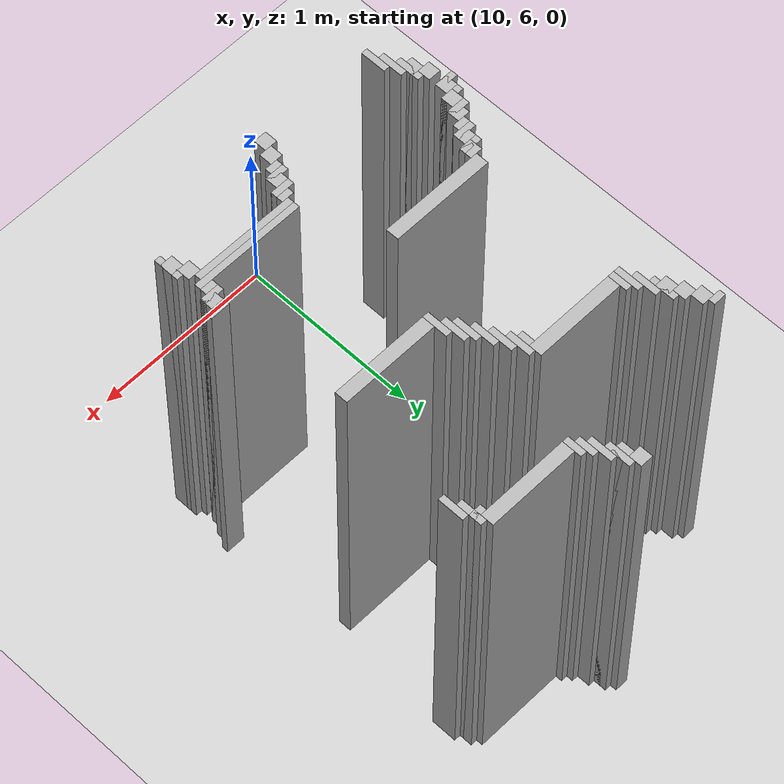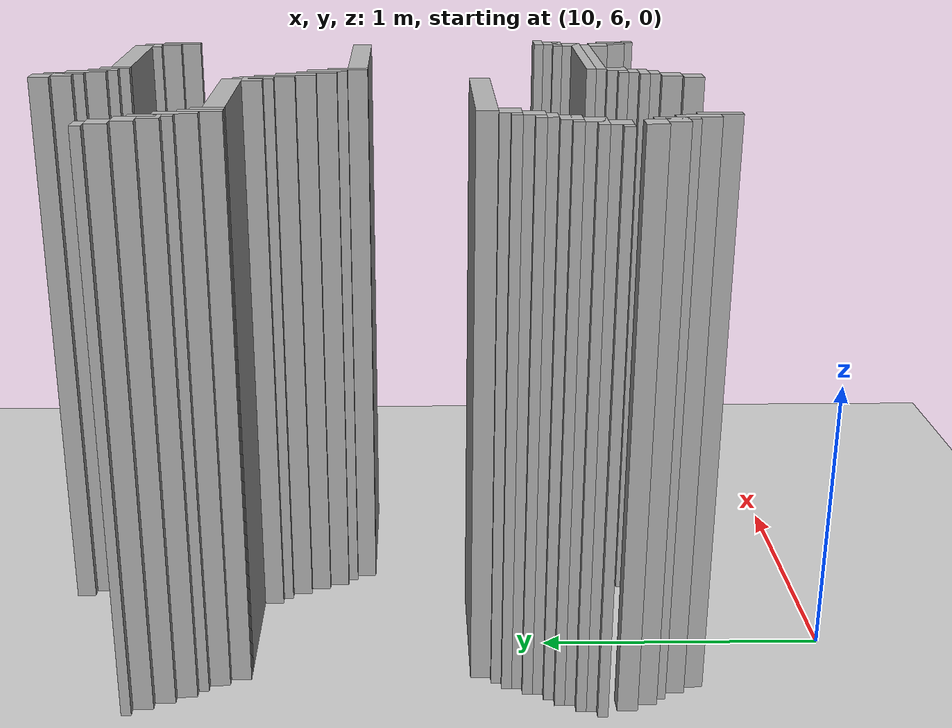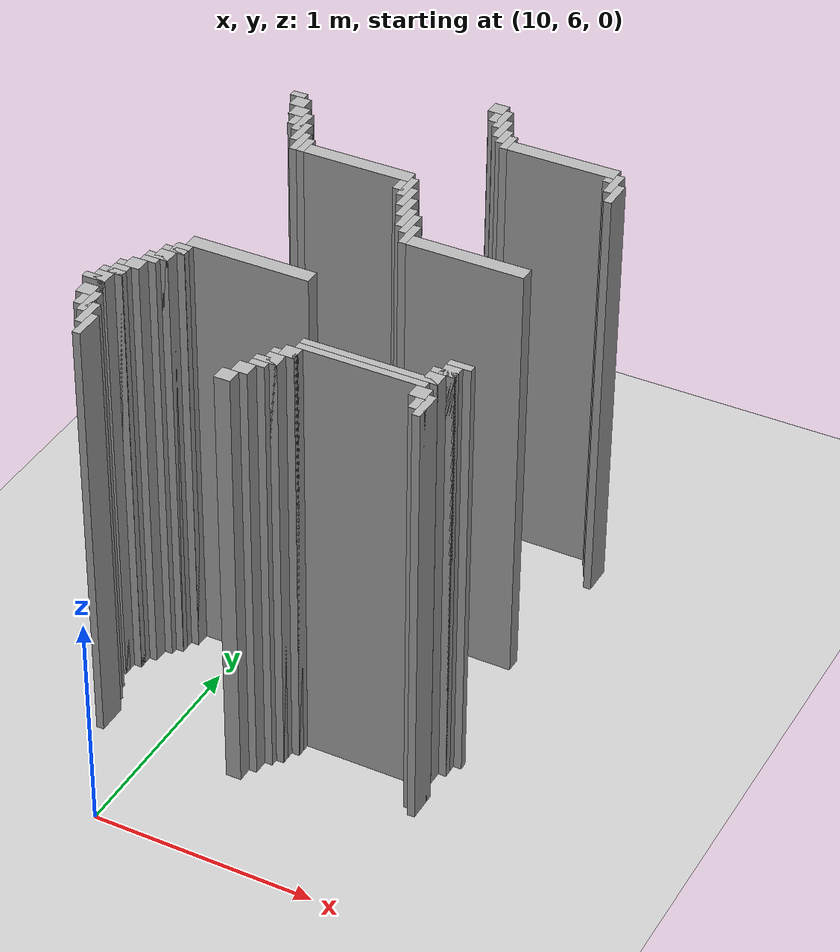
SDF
<sdf version="1.6">
 <world name="slam_world">
  <model name="ground_plane">
   <static>true</static>
   <link name="link">
    <collision name="collision">
     <geometry><plane><normal>0 0 1</normal><size>100 100</size></plane></geometry>
    </collision>
    <visual name="visual">
     <geometry><plane><normal>0 0 1</normal><size>100 100</size></plane></geometry>
     <material>
      <ambient>0.8 0.8 0.8 1</ambient>
      <diffuse>0.8 0.8 0.8 1</diffuse>
      <specular>0.8 0.8 0.8 1</specular>
     </material>
    </visual>
   </link>
  </model>
  <model name="wall_2883">
   <static>true</static>
   <pose>10.406032482598608 8.735498839907192 1.0 0 0 0</pose>
   <link name="link">
    <collision name="collision">
     <geometry><box><size>0.06960556844547564 0.06960556844547564 2.0</size></box></geometry>
    </collision>
    <visual name="visual">
     <geometry><box><size>0.06960556844547564 0.06960556844547564 2.0</size></box></geometry>
     <material><ambient>0.5 0.5 0.5 1</ambient><diffuse>0.7 0.7 0.7 1</diffuse></material>
    </visual>
   </link>
  </model>
  <model name="wall_2898">
   <static>true</static>
   <pose>10.458236658932714 8.665893271461716 1.0 0 0 0</pose>
   <link name="link">
    <collision name="collision">
     <geometry><box><size>0.03480278422273782 0.13921113689095127 2.0</size></box></geometry>
    </collision>
    <visual name="visual">
     <geometry><box><size>0.03480278422273782 0.13921113689095127 2.0</size></box></geometry>
     <material><ambient>0.5 0.5 0.5 1</ambient><diffuse>0.7 0.7 0.7 1</diffuse></material>
    </visual>
   </link>
  </model>
  <model name="wall_2911">
   <static>true</static>
   <pose>10.440835266821345 8.665893271461716 1.0 0 0 0</pose>
   <link name="link">
    <collision name="collision">
     <geometry><box><size>0.06960556844547564 0.06960556844547564 2.0</size></box></geometry>
    </collision>
    <visual name="visual">
     <geometry><box><size>0.06960556844547564 0.06960556844547564 2.0</size></box></geometry>
     <material><ambient>0.5 0.5 0.5 1</ambient><diffuse>0.7 0.7 0.7 1</diffuse></material>
    </visual>
   </link>
  </model>
  <model name="wall_2924">
   <static>true</static>
   <pose>10.493039443155451 8.596287703016241 1.0 0 0 0</pose>
   <link name="link">
    <collision name="collision">
     <geometry><box><size>0.03480278422273782 0.13921113689095127 2.0</size></box></geometry>
    </collision>
    <visual name="visual">
     <geometry><box><size>0.03480278422273782 0.13921113689095127 2.0</size></box></geometry>
     <material><ambient>0.5 0.5 0.5 1</ambient><diffuse>0.7 0.7 0.7 1</diffuse></material>
    </visual>
   </link>
  </model>
  <model name="wall_2945">
   <static>true</static>
   <pose>10.52784222737819 8.544083526682135 1.0 0 0 0</pose>
   <link name="link">
    <collision name="collision">
     <geometry><box><size>0.03480278422273782 0.10440835266821345 2.0</size></box></geometry>
    </collision>
    <visual name="visual">
     <geometry><box><size>0.03480278422273782 0.10440835266821345 2.0</size></box></geometry>
     <material><ambient>0.5 0.5 0.5 1</ambient><diffuse>0.7 0.7 0.7 1</diffuse></material>
    </visual>
   </link>
  </model>
  <model name="wall_2960">
   <static>true</static>
   <pose>10.562645011600928 8.509280742459396 1.0 0 0 0</pose>
   <link name="link">
    <collision name="collision">
     <geometry><box><size>0.03480278422273782 0.10440835266821345 2.0</size></box></geometry>
    </collision>
    <visual name="visual">
     <geometry><box><size>0.03480278422273782 0.10440835266821345 2.0</size></box></geometry>
     <material><ambient>0.5 0.5 0.5 1</ambient><diffuse>0.7 0.7 0.7 1</diffuse></material>
    </visual>
   </link>
  </model>
  <model name="wall_2972">
   <static>true</static>
   <pose>10.82366589327146 8.491879350348027 1.0 0 0 0</pose>
   <link name="link">
    <collision name="collision">
     <geometry><box><size>0.4872389791183295 0.06960556844547564 2.0</size></box></geometry>
    </collision>
    <visual name="visual">
     <geometry><box><size>0.4872389791183295 0.06960556844547564 2.0</size></box></geometry>
     <material><ambient>0.5 0.5 0.5 1</ambient><diffuse>0.7 0.7 0.7 1</diffuse></material>
    </visual>
   </link>
  </model>
  <model name="wall_2982">
   <static>true</static>
   <pose>11.084686774941995 8.422273781902552 1.0 0 0 0</pose>
   <link name="link">
    <collision name="collision">
     <geometry><box><size>0.03480278422273782 0.13921113689095127 2.0</size></box></geometry>
    </collision>
    <visual name="visual">
     <geometry><box><size>0.03480278422273782 0.13921113689095127 2.0</size></box></geometry>
     <material><ambient>0.5 0.5 0.5 1</ambient><diffuse>0.7 0.7 0.7 1</diffuse></material>
    </visual>
   </link>
  </model>
  <model name="wall_2994">
   <static>true</static>
   <pose>9.605568445475638 8.43967517401392 1.0 0 0 0</pose>
   <link name="link">
    <collision name="collision">
     <geometry><box><size>0.06960556844547564 0.03480278422273782 2.0</size></box></geometry>
    </collision>
    <visual name="visual">
     <geometry><box><size>0.06960556844547564 0.03480278422273782 2.0</size></box></geometry>
     <material><ambient>0.5 0.5 0.5 1</ambient><diffuse>0.7 0.7 0.7 1</diffuse></material>
    </visual>
   </link>
  </model>
  <model name="wall_2995">
   <static>true</static>
   <pose>11.067285382830626 8.43967517401392 1.0 0 0 0</pose>
   <link name="link">
    <collision name="collision">
     <geometry><box><size>0.06960556844547564 0.03480278422273782 2.0</size></box></geometry>
    </collision>
    <visual name="visual">
     <geometry><box><size>0.06960556844547564 0.03480278422273782 2.0</size></box></geometry>
     <material><ambient>0.5 0.5 0.5 1</ambient><diffuse>0.7 0.7 0.7 1</diffuse></material>
    </visual>
   </link>
  </model>
  <model name="wall_3007">
   <static>true</static>
   <pose>9.640371229698376 8.387470997679815 1.0 0 0 0</pose>
   <link name="link">
    <collision name="collision">
     <geometry><box><size>0.06960556844547564 0.06960556844547564 2.0</size></box></geometry>
    </collision>
    <visual name="visual">
     <geometry><box><size>0.06960556844547564 0.06960556844547564 2.0</size></box></geometry>
     <material><ambient>0.5 0.5 0.5 1</ambient><diffuse>0.7 0.7 0.7 1</diffuse></material>
    </visual>
   </link>
  </model>
  <model name="wall_3008">
   <static>true</static>
   <pose>11.119489559164732 8.352668213457076 1.0 0 0 0</pose>
   <link name="link">
    <collision name="collision">
     <geometry><box><size>0.03480278422273782 0.13921113689095127 2.0</size></box></geometry>
    </collision>
    <visual name="visual">
     <geometry><box><size>0.03480278422273782 0.13921113689095127 2.0</size></box></geometry>
     <material><ambient>0.5 0.5 0.5 1</ambient><diffuse>0.7 0.7 0.7 1</diffuse></material>
    </visual>
   </link>
  </model>
  <model name="wall_3020">
   <static>true</static>
   <pose>9.675174013921113 8.317865429234338 1.0 0 0 0</pose>
   <link name="link">
    <collision name="collision">
     <geometry><box><size>0.06960556844547564 0.06960556844547564 2.0</size></box></geometry>
    </collision>
    <visual name="visual">
     <geometry><box><size>0.06960556844547564 0.06960556844547564 2.0</size></box></geometry>
     <material><ambient>0.5 0.5 0.5 1</ambient><diffuse>0.7 0.7 0.7 1</diffuse></material>
    </visual>
   </link>
  </model>
  <model name="wall_3033">
   <static>true</static>
   <pose>9.72737819025522 8.248259860788863 1.0 0 0 0</pose>
   <link name="link">
    <collision name="collision">
     <geometry><box><size>0.03480278422273782 0.13921113689095127 2.0</size></box></geometry>
    </collision>
    <visual name="visual">
     <geometry><box><size>0.03480278422273782 0.13921113689095127 2.0</size></box></geometry>
     <material><ambient>0.5 0.5 0.5 1</ambient><diffuse>0.7 0.7 0.7 1</diffuse></material>
    </visual>
   </link>
  </model>
  <model name="wall_3045">
   <static>true</static>
   <pose>9.70997679814385 8.248259860788863 1.0 0 0 0</pose>
   <link name="link">
    <collision name="collision">
     <geometry><box><size>0.06960556844547564 0.06960556844547564 2.0</size></box></geometry>
    </collision>
    <visual name="visual">
     <geometry><box><size>0.06960556844547564 0.06960556844547564 2.0</size></box></geometry>
     <material><ambient>0.5 0.5 0.5 1</ambient><diffuse>0.7 0.7 0.7 1</diffuse></material>
    </visual>
   </link>
  </model>
  <model name="wall_3057">
   <static>true</static>
   <pose>9.762180974477959 8.178654292343387 1.0 0 0 0</pose>
   <link name="link">
    <collision name="collision">
     <geometry><box><size>0.03480278422273782 0.13921113689095127 2.0</size></box></geometry>
    </collision>
    <visual name="visual">
     <geometry><box><size>0.03480278422273782 0.13921113689095127 2.0</size></box></geometry>
     <material><ambient>0.5 0.5 0.5 1</ambient><diffuse>0.7 0.7 0.7 1</diffuse></material>
    </visual>
   </link>
  </model>
  <model name="wall_3079">
   <static>true</static>
   <pose>9.796983758700696 8.109048723897912 1.0 0 0 0</pose>
   <link name="link">
    <collision name="collision">
     <geometry><box><size>0.03480278422273782 0.13921113689095127 2.0</size></box></geometry>
    </collision>
    <visual name="visual">
     <geometry><box><size>0.03480278422273782 0.13921113689095127 2.0</size></box></geometry>
     <material><ambient>0.5 0.5 0.5 1</ambient><diffuse>0.7 0.7 0.7 1</diffuse></material>
    </visual>
   </link>
  </model>
  <model name="wall_3091">
   <static>true</static>
   <pose>9.831786542923433 8.091647331786543 1.0 0 0 0</pose>
   <link name="link">
    <collision name="collision">
     <geometry><box><size>0.03480278422273782 0.10440835266821345 2.0</size></box></geometry>
    </collision>
    <visual name="visual">
     <geometry><box><size>0.03480278422273782 0.10440835266821345 2.0</size></box></geometry>
     <material><ambient>0.5 0.5 0.5 1</ambient><diffuse>0.7 0.7 0.7 1</diffuse></material>
    </visual>
   </link>
  </model>
  <model name="wall_3103">
   <static>true</static>
   <pose>10.092807424593968 8.074245939675174 1.0 0 0 0</pose>
   <link name="link">
    <collision name="collision">
     <geometry><box><size>0.4872389791183295 0.06960556844547564 2.0</size></box></geometry>
    </collision>
    <visual name="visual">
     <geometry><box><size>0.4872389791183295 0.06960556844547564 2.0</size></box></geometry>
     <material><ambient>0.5 0.5 0.5 1</ambient><diffuse>0.7 0.7 0.7 1</diffuse></material>
    </visual>
   </link>
  </model>
  <model name="wall_3111">
   <static>true</static>
   <pose>10.3538283062645 8.004640371229698 1.0 0 0 0</pose>
   <link name="link">
    <collision name="collision">
     <geometry><box><size>0.03480278422273782 0.13921113689095127 2.0</size></box></geometry>
    </collision>
    <visual name="visual">
     <geometry><box><size>0.03480278422273782 0.13921113689095127 2.0</size></box></geometry>
     <material><ambient>0.5 0.5 0.5 1</ambient><diffuse>0.7 0.7 0.7 1</diffuse></material>
    </visual>
   </link>
  </model>
  <model name="wall_3119">
   <static>true</static>
   <pose>10.336426914153131 8.004640371229698 1.0 0 0 0</pose>
   <link name="link">
    <collision name="collision">
     <geometry><box><size>0.06960556844547564 0.06960556844547564 2.0</size></box></geometry>
    </collision>
    <visual name="visual">
     <geometry><box><size>0.06960556844547564 0.06960556844547564 2.0</size></box></geometry>
     <material><ambient>0.5 0.5 0.5 1</ambient><diffuse>0.7 0.7 0.7 1</diffuse></material>
    </visual>
   </link>
  </model>
  <model name="wall_3128">
   <static>true</static>
   <pose>10.38863109048724 7.935034802784222 1.0 0 0 0</pose>
   <link name="link">
    <collision name="collision">
     <geometry><box><size>0.03480278422273782 0.13921113689095127 2.0</size></box></geometry>
    </collision>
    <visual name="visual">
     <geometry><box><size>0.03480278422273782 0.13921113689095127 2.0</size></box></geometry>
     <material><ambient>0.5 0.5 0.5 1</ambient><diffuse>0.7 0.7 0.7 1</diffuse></material>
    </visual>
   </link>
  </model>
  <model name="wall_3142">
   <static>true</static>
   <pose>10.423433874709977 7.865429234338746 1.0 0 0 0</pose>
   <link name="link">
    <collision name="collision">
     <geometry><box><size>0.03480278422273782 0.13921113689095127 2.0</size></box></geometry>
    </collision>
    <visual name="visual">
     <geometry><box><size>0.03480278422273782 0.13921113689095127 2.0</size></box></geometry>
     <material><ambient>0.5 0.5 0.5 1</ambient><diffuse>0.7 0.7 0.7 1</diffuse></material>
    </visual>
   </link>
  </model>
  <model name="wall_3151">
   <static>true</static>
   <pose>10.458236658932714 7.795823665893272 1.0 0 0 0</pose>
   <link name="link">
    <collision name="collision">
     <geometry><box><size>0.03480278422273782 0.13921113689095127 2.0</size></box></geometry>
    </collision>
    <visual name="visual">
     <geometry><box><size>0.03480278422273782 0.13921113689095127 2.0</size></box></geometry>
     <material><ambient>0.5 0.5 0.5 1</ambient><diffuse>0.7 0.7 0.7 1</diffuse></material>
    </visual>
   </link>
  </model>
  <model name="wall_3160">
   <static>true</static>
   <pose>10.493039443155451 7.761020881670533 1.0 0 0 0</pose>
   <link name="link">
    <collision name="collision">
     <geometry><box><size>0.03480278422273782 0.13921113689095127 2.0</size></box></geometry>
    </collision>
    <visual name="visual">
     <geometry><box><size>0.03480278422273782 0.13921113689095127 2.0</size></box></geometry>
     <material><ambient>0.5 0.5 0.5 1</ambient><diffuse>0.7 0.7 0.7 1</diffuse></material>
    </visual>
   </link>
  </model>
  <model name="wall_3172">
   <static>true</static>
   <pose>10.52784222737819 7.691415313225058 1.0 0 0 0</pose>
   <link name="link">
    <collision name="collision">
     <geometry><box><size>0.03480278422273782 0.13921113689095127 2.0</size></box></geometry>
    </collision>
    <visual name="visual">
     <geometry><box><size>0.03480278422273782 0.13921113689095127 2.0</size></box></geometry>
     <material><ambient>0.5 0.5 0.5 1</ambient><diffuse>0.7 0.7 0.7 1</diffuse></material>
    </visual>
   </link>
  </model>
  <model name="wall_3187">
   <static>true</static>
   <pose>10.806264501160092 7.65661252900232 1.0 0 0 0</pose>
   <link name="link">
    <collision name="collision">
     <geometry><box><size>0.5220417633410672 0.06960556844547564 2.0</size></box></geometry>
    </collision>
    <visual name="visual">
     <geometry><box><size>0.5220417633410672 0.06960556844547564 2.0</size></box></geometry>
     <material><ambient>0.5 0.5 0.5 1</ambient><diffuse>0.7 0.7 0.7 1</diffuse></material>
    </visual>
   </link>
  </model>
  <model name="wall_3314">
   <static>true</static>
   <pose>10.058004640371228 7.238979118329466 1.0 0 0 0</pose>
   <link name="link">
    <collision name="collision">
     <geometry><box><size>0.5568445475638051 0.06960556844547564 2.0</size></box></geometry>
    </collision>
    <visual name="visual">
     <geometry><box><size>0.5568445475638051 0.06960556844547564 2.0</size></box></geometry>
     <material><ambient>0.5 0.5 0.5 1</ambient><diffuse>0.7 0.7 0.7 1</diffuse></material>
    </visual>
   </link>
  </model>
  <model name="wall_3326">
   <static>true</static>
   <pose>9.779582366589327 7.16937354988399 1.0 0 0 0</pose>
   <link name="link">
    <collision name="collision">
     <geometry><box><size>0.06960556844547564 0.06960556844547564 2.0</size></box></geometry>
    </collision>
    <visual name="visual">
     <geometry><box><size>0.06960556844547564 0.06960556844547564 2.0</size></box></geometry>
     <material><ambient>0.5 0.5 0.5 1</ambient><diffuse>0.7 0.7 0.7 1</diffuse></material>
    </visual>
   </link>
  </model>
  <model name="wall_3338">
   <static>true</static>
   <pose>9.762180974477959 7.151972157772621 1.0 0 0 0</pose>
   <link name="link">
    <collision name="collision">
     <geometry><box><size>0.10440835266821345 0.03480278422273782 2.0</size></box></geometry>
    </collision>
    <visual name="visual">
     <geometry><box><size>0.10440835266821345 0.03480278422273782 2.0</size></box></geometry>
     <material><ambient>0.5 0.5 0.5 1</ambient><diffuse>0.7 0.7 0.7 1</diffuse></material>
    </visual>
   </link>
  </model>
  <model name="wall_3350">
   <static>true</static>
   <pose>9.744779582366588 7.099767981438514 1.0 0 0 0</pose>
   <link name="link">
    <collision name="collision">
     <geometry><box><size>0.06960556844547564 0.06960556844547564 2.0</size></box></geometry>
    </collision>
    <visual name="visual">
     <geometry><box><size>0.06960556844547564 0.06960556844547564 2.0</size></box></geometry>
     <material><ambient>0.5 0.5 0.5 1</ambient><diffuse>0.7 0.7 0.7 1</diffuse></material>
    </visual>
   </link>
  </model>
  <model name="wall_3362">
   <static>true</static>
   <pose>9.72737819025522 7.082366589327146 1.0 0 0 0</pose>
   <link name="link">
    <collision name="collision">
     <geometry><box><size>0.10440835266821345 0.03480278422273782 2.0</size></box></geometry>
    </collision>
    <visual name="visual">
     <geometry><box><size>0.10440835266821345 0.03480278422273782 2.0</size></box></geometry>
     <material><ambient>0.5 0.5 0.5 1</ambient><diffuse>0.7 0.7 0.7 1</diffuse></material>
    </visual>
   </link>
  </model>
  <model name="wall_3369">
   <static>true</static>
   <pose>9.70997679814385 7.047563805104408 1.0 0 0 0</pose>
   <link name="link">
    <collision name="collision">
     <geometry><box><size>0.06960556844547564 0.03480278422273782 2.0</size></box></geometry>
    </collision>
    <visual name="visual">
     <geometry><box><size>0.06960556844547564 0.03480278422273782 2.0</size></box></geometry>
     <material><ambient>0.5 0.5 0.5 1</ambient><diffuse>0.7 0.7 0.7 1</diffuse></material>
    </visual>
   </link>
  </model>
  <model name="wall_3379">
   <static>true</static>
   <pose>9.675174013921113 6.995359628770301 1.0 0 0 0</pose>
   <link name="link">
    <collision name="collision">
     <geometry><box><size>0.06960556844547564 0.06960556844547564 2.0</size></box></geometry>
    </collision>
    <visual name="visual">
     <geometry><box><size>0.06960556844547564 0.06960556844547564 2.0</size></box></geometry>
     <material><ambient>0.5 0.5 0.5 1</ambient><diffuse>0.7 0.7 0.7 1</diffuse></material>
    </visual>
   </link>
  </model>
  <model name="wall_3386">
   <static>true</static>
   <pose>9.657772621809745 6.977958236658933 1.0 0 0 0</pose>
   <link name="link">
    <collision name="collision">
     <geometry><box><size>0.10440835266821345 0.03480278422273782 2.0</size></box></geometry>
    </collision>
    <visual name="visual">
     <geometry><box><size>0.10440835266821345 0.03480278422273782 2.0</size></box></geometry>
     <material><ambient>0.5 0.5 0.5 1</ambient><diffuse>0.7 0.7 0.7 1</diffuse></material>
    </visual>
   </link>
  </model>
  <model name="wall_3387">
   <static>true</static>
   <pose>11.119489559164732 6.977958236658933 1.0 0 0 0</pose>
   <link name="link">
    <collision name="collision">
     <geometry><box><size>0.10440835266821345 0.03480278422273782 2.0</size></box></geometry>
    </collision>
    <visual name="visual">
     <geometry><box><size>0.10440835266821345 0.03480278422273782 2.0</size></box></geometry>
     <material><ambient>0.5 0.5 0.5 1</ambient><diffuse>0.7 0.7 0.7 1</diffuse></material>
    </visual>
   </link>
  </model>
  <model name="wall_3396">
   <static>true</static>
   <pose>9.640371229698376 6.9257540603248255 1.0 0 0 0</pose>
   <link name="link">
    <collision name="collision">
     <geometry><box><size>0.06960556844547564 0.06960556844547564 2.0</size></box></geometry>
    </collision>
    <visual name="visual">
     <geometry><box><size>0.06960556844547564 0.06960556844547564 2.0</size></box></geometry>
     <material><ambient>0.5 0.5 0.5 1</ambient><diffuse>0.7 0.7 0.7 1</diffuse></material>
    </visual>
   </link>
  </model>
  <model name="wall_3397">
   <static>true</static>
   <pose>11.102088167053363 6.9257540603248255 1.0 0 0 0</pose>
   <link name="link">
    <collision name="collision">
     <geometry><box><size>0.06960556844547564 0.06960556844547564 2.0</size></box></geometry>
    </collision>
    <visual name="visual">
     <geometry><box><size>0.06960556844547564 0.06960556844547564 2.0</size></box></geometry>
     <material><ambient>0.5 0.5 0.5 1</ambient><diffuse>0.7 0.7 0.7 1</diffuse></material>
    </visual>
   </link>
  </model>
  <model name="wall_3408">
   <static>true</static>
   <pose>9.622969837587007 6.908352668213457 1.0 0 0 0</pose>
   <link name="link">
    <collision name="collision">
     <geometry><box><size>0.10440835266821345 0.03480278422273782 2.0</size></box></geometry>
    </collision>
    <visual name="visual">
     <geometry><box><size>0.10440835266821345 0.03480278422273782 2.0</size></box></geometry>
     <material><ambient>0.5 0.5 0.5 1</ambient><diffuse>0.7 0.7 0.7 1</diffuse></material>
    </visual>
   </link>
  </model>
  <model name="wall_3409">
   <static>true</static>
   <pose>11.084686774941995 6.908352668213457 1.0 0 0 0</pose>
   <link name="link">
    <collision name="collision">
     <geometry><box><size>0.10440835266821345 0.03480278422273782 2.0</size></box></geometry>
    </collision>
    <visual name="visual">
     <geometry><box><size>0.10440835266821345 0.03480278422273782 2.0</size></box></geometry>
     <material><ambient>0.5 0.5 0.5 1</ambient><diffuse>0.7 0.7 0.7 1</diffuse></material>
    </visual>
   </link>
  </model>
  <model name="wall_3415">
   <static>true</static>
   <pose>9.605568445475638 6.85614849187935 1.0 0 0 0</pose>
   <link name="link">
    <collision name="collision">
     <geometry><box><size>0.06960556844547564 0.06960556844547564 2.0</size></box></geometry>
    </collision>
    <visual name="visual">
     <geometry><box><size>0.06960556844547564 0.06960556844547564 2.0</size></box></geometry>
     <material><ambient>0.5 0.5 0.5 1</ambient><diffuse>0.7 0.7 0.7 1</diffuse></material>
    </visual>
   </link>
  </model>
  <model name="wall_3416">
   <static>true</static>
   <pose>11.067285382830626 6.85614849187935 1.0 0 0 0</pose>
   <link name="link">
    <collision name="collision">
     <geometry><box><size>0.06960556844547564 0.06960556844547564 2.0</size></box></geometry>
    </collision>
    <visual name="visual">
     <geometry><box><size>0.06960556844547564 0.06960556844547564 2.0</size></box></geometry>
     <material><ambient>0.5 0.5 0.5 1</ambient><diffuse>0.7 0.7 0.7 1</diffuse></material>
    </visual>
   </link>
  </model>
  <model name="wall_3425">
   <static>true</static>
   <pose>9.588167053364268 6.838747099767981 1.0 0 0 0</pose>
   <link name="link">
    <collision name="collision">
     <geometry><box><size>0.10440835266821345 0.03480278422273782 2.0</size></box></geometry>
    </collision>
    <visual name="visual">
     <geometry><box><size>0.10440835266821345 0.03480278422273782 2.0</size></box></geometry>
     <material><ambient>0.5 0.5 0.5 1</ambient><diffuse>0.7 0.7 0.7 1</diffuse></material>
    </visual>
   </link>
  </model>
  <model name="wall_3426">
   <static>true</static>
   <pose>10.806264501160092 6.838747099767981 1.0 0 0 0</pose>
   <link name="link">
    <collision name="collision">
     <geometry><box><size>0.5916473317865429 0.03480278422273782 2.0</size></box></geometry>
    </collision>
    <visual name="visual">
     <geometry><box><size>0.5916473317865429 0.03480278422273782 2.0</size></box></geometry>
     <material><ambient>0.5 0.5 0.5 1</ambient><diffuse>0.7 0.7 0.7 1</diffuse></material>
    </visual>
   </link>
  </model>
  <model name="wall_3435">
   <static>true</static>
   <pose>10.788863109048723 6.803944315545244 1.0 0 0 0</pose>
   <link name="link">
    <collision name="collision">
     <geometry><box><size>0.5568445475638051 0.03480278422273782 2.0</size></box></geometry>
    </collision>
    <visual name="visual">
     <geometry><box><size>0.5568445475638051 0.03480278422273782 2.0</size></box></geometry>
     <material><ambient>0.5 0.5 0.5 1</ambient><diffuse>0.7 0.7 0.7 1</diffuse></material>
    </visual>
   </link>
  </model>
  <model name="wall_3449">
   <static>true</static>
   <pose>9.605568445475638 6.751740139211137 1.0 0 0 0</pose>
   <link name="link">
    <collision name="collision">
     <geometry><box><size>0.06960556844547564 0.06960556844547564 2.0</size></box></geometry>
    </collision>
    <visual name="visual">
     <geometry><box><size>0.06960556844547564 0.06960556844547564 2.0</size></box></geometry>
     <material><ambient>0.5 0.5 0.5 1</ambient><diffuse>0.7 0.7 0.7 1</diffuse></material>
    </visual>
   </link>
  </model>
  <model name="wall_3450">
   <static>true</static>
   <pose>10.51044083526682 6.751740139211137 1.0 0 0 0</pose>
   <link name="link">
    <collision name="collision">
     <geometry><box><size>0.06960556844547564 0.06960556844547564 2.0</size></box></geometry>
    </collision>
    <visual name="visual">
     <geometry><box><size>0.06960556844547564 0.06960556844547564 2.0</size></box></geometry>
     <material><ambient>0.5 0.5 0.5 1</ambient><diffuse>0.7 0.7 0.7 1</diffuse></material>
    </visual>
   </link>
  </model>
  <model name="wall_3451">
   <static>true</static>
   <pose>11.067285382830626 6.751740139211137 1.0 0 0 0</pose>
   <link name="link">
    <collision name="collision">
     <geometry><box><size>0.06960556844547564 0.06960556844547564 2.0</size></box></geometry>
    </collision>
    <visual name="visual">
     <geometry><box><size>0.06960556844547564 0.06960556844547564 2.0</size></box></geometry>
     <material><ambient>0.5 0.5 0.5 1</ambient><diffuse>0.7 0.7 0.7 1</diffuse></material>
    </visual>
   </link>
  </model>
  <model name="wall_3469">
   <static>true</static>
   <pose>9.657772621809745 6.682134570765661 1.0 0 0 0</pose>
   <link name="link">
    <collision name="collision">
     <geometry><box><size>0.03480278422273782 0.13921113689095127 2.0</size></box></geometry>
    </collision>
    <visual name="visual">
     <geometry><box><size>0.03480278422273782 0.13921113689095127 2.0</size></box></geometry>
     <material><ambient>0.5 0.5 0.5 1</ambient><diffuse>0.7 0.7 0.7 1</diffuse></material>
    </visual>
   </link>
  </model>
  <model name="wall_3470">
   <static>true</static>
   <pose>10.493039443155451 6.734338747099768 1.0 0 0 0</pose>
   <link name="link">
    <collision name="collision">
     <geometry><box><size>0.10440835266821345 0.03480278422273782 2.0</size></box></geometry>
    </collision>
    <visual name="visual">
     <geometry><box><size>0.10440835266821345 0.03480278422273782 2.0</size></box></geometry>
     <material><ambient>0.5 0.5 0.5 1</ambient><diffuse>0.7 0.7 0.7 1</diffuse></material>
    </visual>
   </link>
  </model>
  <model name="wall_3471">
   <static>true</static>
   <pose>11.119489559164732 6.682134570765661 1.0 0 0 0</pose>
   <link name="link">
    <collision name="collision">
     <geometry><box><size>0.03480278422273782 0.13921113689095127 2.0</size></box></geometry>
    </collision>
    <visual name="visual">
     <geometry><box><size>0.03480278422273782 0.13921113689095127 2.0</size></box></geometry>
     <material><ambient>0.5 0.5 0.5 1</ambient><diffuse>0.7 0.7 0.7 1</diffuse></material>
    </visual>
   </link>
  </model>
  <model name="wall_3489">
   <static>true</static>
   <pose>9.640371229698376 6.682134570765661 1.0 0 0 0</pose>
   <link name="link">
    <collision name="collision">
     <geometry><box><size>0.06960556844547564 0.06960556844547564 2.0</size></box></geometry>
    </collision>
    <visual name="visual">
     <geometry><box><size>0.06960556844547564 0.06960556844547564 2.0</size></box></geometry>
     <material><ambient>0.5 0.5 0.5 1</ambient><diffuse>0.7 0.7 0.7 1</diffuse></material>
    </visual>
   </link>
  </model>
  <model name="wall_3490">
   <static>true</static>
   <pose>10.475638051044083 6.682134570765661 1.0 0 0 0</pose>
   <link name="link">
    <collision name="collision">
     <geometry><box><size>0.06960556844547564 0.06960556844547564 2.0</size></box></geometry>
    </collision>
    <visual name="visual">
     <geometry><box><size>0.06960556844547564 0.06960556844547564 2.0</size></box></geometry>
     <material><ambient>0.5 0.5 0.5 1</ambient><diffuse>0.7 0.7 0.7 1</diffuse></material>
    </visual>
   </link>
  </model>
  <model name="wall_3491">
   <static>true</static>
   <pose>11.102088167053363 6.682134570765661 1.0 0 0 0</pose>
   <link name="link">
    <collision name="collision">
     <geometry><box><size>0.06960556844547564 0.06960556844547564 2.0</size></box></geometry>
    </collision>
    <visual name="visual">
     <geometry><box><size>0.06960556844547564 0.06960556844547564 2.0</size></box></geometry>
     <material><ambient>0.5 0.5 0.5 1</ambient><diffuse>0.7 0.7 0.7 1</diffuse></material>
    </visual>
   </link>
  </model>
  <model name="wall_3509">
   <static>true</static>
   <pose>9.692575406032482 6.612529002320185 1.0 0 0 0</pose>
   <link name="link">
    <collision name="collision">
     <geometry><box><size>0.03480278422273782 0.13921113689095127 2.0</size></box></geometry>
    </collision>
    <visual name="visual">
     <geometry><box><size>0.03480278422273782 0.13921113689095127 2.0</size></box></geometry>
     <material><ambient>0.5 0.5 0.5 1</ambient><diffuse>0.7 0.7 0.7 1</diffuse></material>
    </visual>
   </link>
  </model>
  <model name="wall_3510">
   <static>true</static>
   <pose>10.458236658932714 6.664733178654292 1.0 0 0 0</pose>
   <link name="link">
    <collision name="collision">
     <geometry><box><size>0.10440835266821345 0.03480278422273782 2.0</size></box></geometry>
    </collision>
    <visual name="visual">
     <geometry><box><size>0.10440835266821345 0.03480278422273782 2.0</size></box></geometry>
     <material><ambient>0.5 0.5 0.5 1</ambient><diffuse>0.7 0.7 0.7 1</diffuse></material>
    </visual>
   </link>
  </model>
  <model name="wall_3523">
   <static>true</static>
   <pose>10.440835266821345 6.629930394431554 1.0 0 0 0</pose>
   <link name="link">
    <collision name="collision">
     <geometry><box><size>0.06960556844547564 0.03480278422273782 2.0</size></box></geometry>
    </collision>
    <visual name="visual">
     <geometry><box><size>0.06960556844547564 0.03480278422273782 2.0</size></box></geometry>
     <material><ambient>0.5 0.5 0.5 1</ambient><diffuse>0.7 0.7 0.7 1</diffuse></material>
    </visual>
   </link>
  </model>
  <model name="wall_3539">
   <static>true</static>
   <pose>9.72737819025522 6.5429234338747095 1.0 0 0 0</pose>
   <link name="link">
    <collision name="collision">
     <geometry><box><size>0.03480278422273782 0.13921113689095127 2.0</size></box></geometry>
    </collision>
    <visual name="visual">
     <geometry><box><size>0.03480278422273782 0.13921113689095127 2.0</size></box></geometry>
     <material><ambient>0.5 0.5 0.5 1</ambient><diffuse>0.7 0.7 0.7 1</diffuse></material>
    </visual>
   </link>
  </model>
  <model name="wall_3540">
   <static>true</static>
   <pose>10.406032482598608 6.577726218097448 1.0 0 0 0</pose>
   <link name="link">
    <collision name="collision">
     <geometry><box><size>0.06960556844547564 0.06960556844547564 2.0</size></box></geometry>
    </collision>
    <visual name="visual">
     <geometry><box><size>0.06960556844547564 0.06960556844547564 2.0</size></box></geometry>
     <material><ambient>0.5 0.5 0.5 1</ambient><diffuse>0.7 0.7 0.7 1</diffuse></material>
    </visual>
   </link>
  </model>
  <model name="wall_3560">
   <static>true</static>
   <pose>10.37122969837587 6.508120649651972 1.0 0 0 0</pose>
   <link name="link">
    <collision name="collision">
     <geometry><box><size>0.06960556844547564 0.06960556844547564 2.0</size></box></geometry>
    </collision>
    <visual name="visual">
     <geometry><box><size>0.06960556844547564 0.06960556844547564 2.0</size></box></geometry>
     <material><ambient>0.5 0.5 0.5 1</ambient><diffuse>0.7 0.7 0.7 1</diffuse></material>
    </visual>
   </link>
  </model>
 </world>
</sdf>
